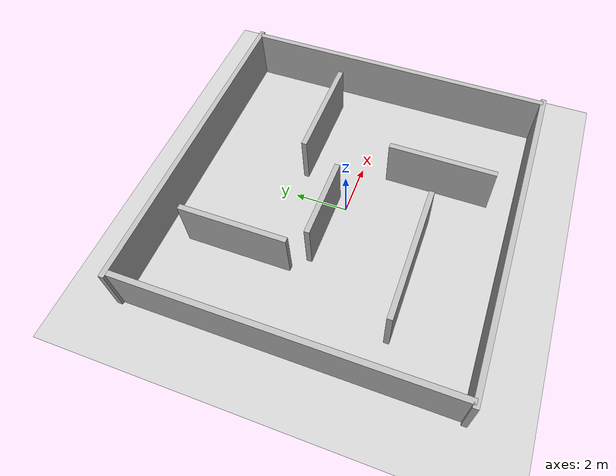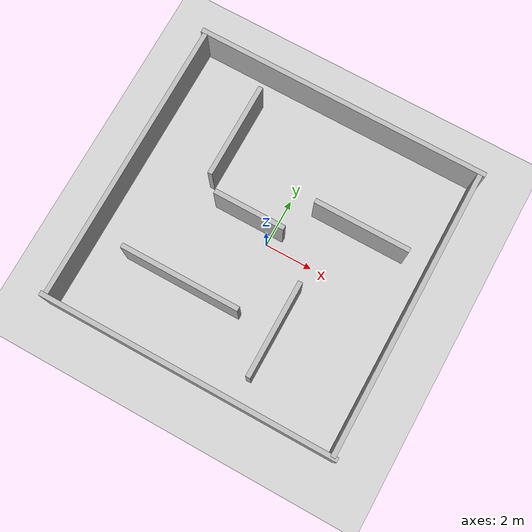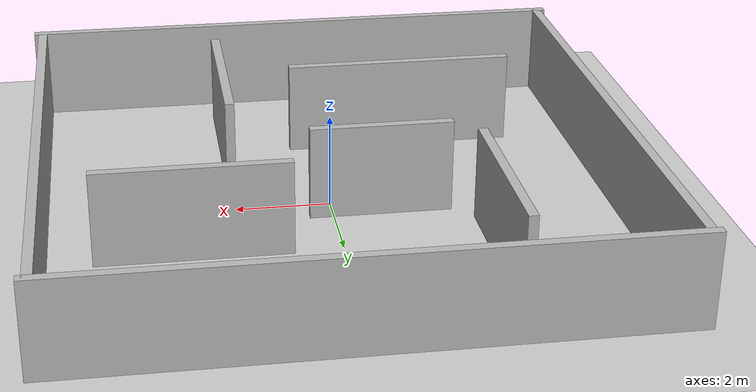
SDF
<?xml version="1.0" ?>
<sdf version="1.6">
  <world name="maze_world">

    <!-- Sun Light -->
    <include>
      <uri>model://sun</uri>
    </include>

    <!-- Ground Plane -->
    <include>
      <uri>model://ground_plane</uri>
    </include>

    <!-- ==================== OUTER BOUNDARY WALLS ==================== -->

    <!-- North Wall -->
    <model name="wall_north">
      <pose>0 6 1 0 0 0</pose>
      <static>true</static>
      <link name="link">
        <collision name="collision">
          <geometry><box><size>12.4 0.2 2.0</size></box></geometry>
        </collision>
        <visual name="visual">
          <geometry><box><size>12.4 0.2 2.0</size></box></geometry>
        </visual>
      </link>
    </model>

    <!-- South Wall -->
    <model name="wall_south">
      <pose>0 -6 1 0 0 0</pose>
      <static>true</static>
      <link name="link">
        <collision name="collision">
          <geometry><box><size>12.4 0.2 2.0</size></box></geometry>
        </collision>
        <visual name="visual">
          <geometry><box><size>12.4 0.2 2.0</size></box></geometry>
        </visual>
      </link>
    </model>

    <!-- East Wall -->
    <model name="wall_east">
      <pose>6 0 1 0 0 1.5708</pose>
      <static>true</static>
      <link name="link">
        <collision name="collision">
          <geometry><box><size>12.0 0.2 2.0</size></box></geometry>
        </collision>
        <visual name="visual">
          <geometry><box><size>12.0 0.2 2.0</size></box></geometry>
        </visual>
      </link>
    </model>

    <!-- West Wall -->
    <model name="wall_west">
      <pose>-6 0 1 0 0 1.5708</pose>
      <static>true</static>
      <link name="link">
        <collision name="collision">
          <geometry><box><size>12.0 0.2 2.0</size></box></geometry>
        </collision>
        <visual name="visual">
          <geometry><box><size>12.0 0.2 2.0</size></box></geometry>
        </visual>
      </link>
    </model>

    <!-- ==================== INTERIOR MAZE WALLS ==================== -->

    <!-- Inner Wall 1 (North-West Vertical) -->
    <model name="inner_wall_1">
      <pose>-3 3 1 0 0 1.5708</pose>
      <static>true</static>
      <link name="link">
        <collision name="collision">
          <geometry><box><size>4.0 0.2 2.0</size></box></geometry>
        </collision>
        <visual name="visual">
          <geometry><box><size>4.0 0.2 2.0</size></box></geometry>
        </visual>
      </link>
    </model>

    <!-- Inner Wall 2 (North-East Horizontal) -->
    <model name="inner_wall_2">
      <pose>3 2 1 0 0 0</pose>
      <static>true</static>
      <link name="link">
        <collision name="collision">
          <geometry><box><size>4.0 0.2 2.0</size></box></geometry>
        </collision>
        <visual name="visual">
          <geometry><box><size>4.0 0.2 2.0</size></box></geometry>
        </visual>
      </link>
    </model>

    <!-- Inner Wall 3 (South-West Horizontal) -->
    <model name="inner_wall_3">
      <pose>-2 -3 1 0 0 0</pose>
      <static>true</static>
      <link name="link">
        <collision name="collision">
          <geometry><box><size>5.0 0.2 2.0</size></box></geometry>
        </collision>
        <visual name="visual">
          <geometry><box><size>5.0 0.2 2.0</size></box></geometry>
        </visual>
      </link>
    </model>

    <!-- Inner Wall 4 (South-East Vertical) -->
    <model name="inner_wall_4">
      <pose>2 -3 1 0 0 1.5708</pose>
      <static>true</static>
      <link name="link">
        <collision name="collision">
          <geometry><box><size>4.0 0.2 2.0</size></box></geometry>
        </collision>
        <visual name="visual">
          <geometry><box><size>4.0 0.2 2.0</size></box></geometry>
        </visual>
      </link>
    </model>

    <!-- Inner Wall 5 (Center Divider) -->
    <model name="inner_wall_5">
      <pose>-1 0.5 1 0 0 0</pose>
      <static>true</static>
      <link name="link">
        <collision name="collision">
          <geometry><box><size>3.0 0.2 2.0</size></box></geometry>
        </collision>
        <visual name="visual">
          <geometry><box><size>3.0 0.2 2.0</size></box></geometry>
        </visual>
      </link>
    </model>

  </world>
</sdf>
